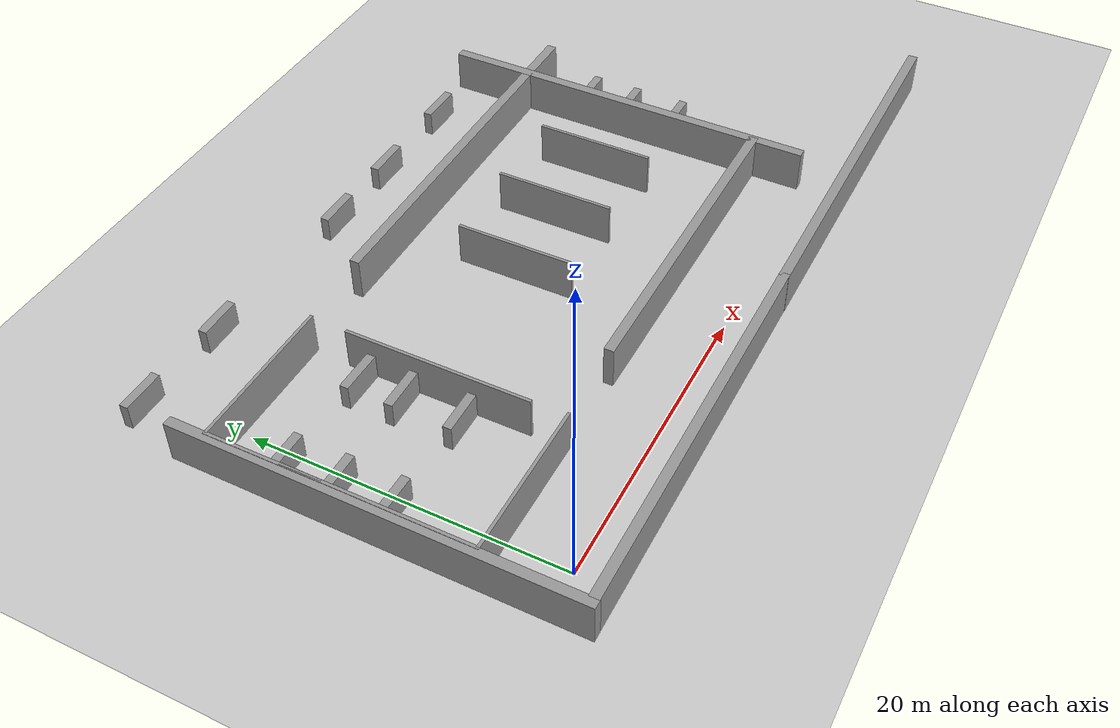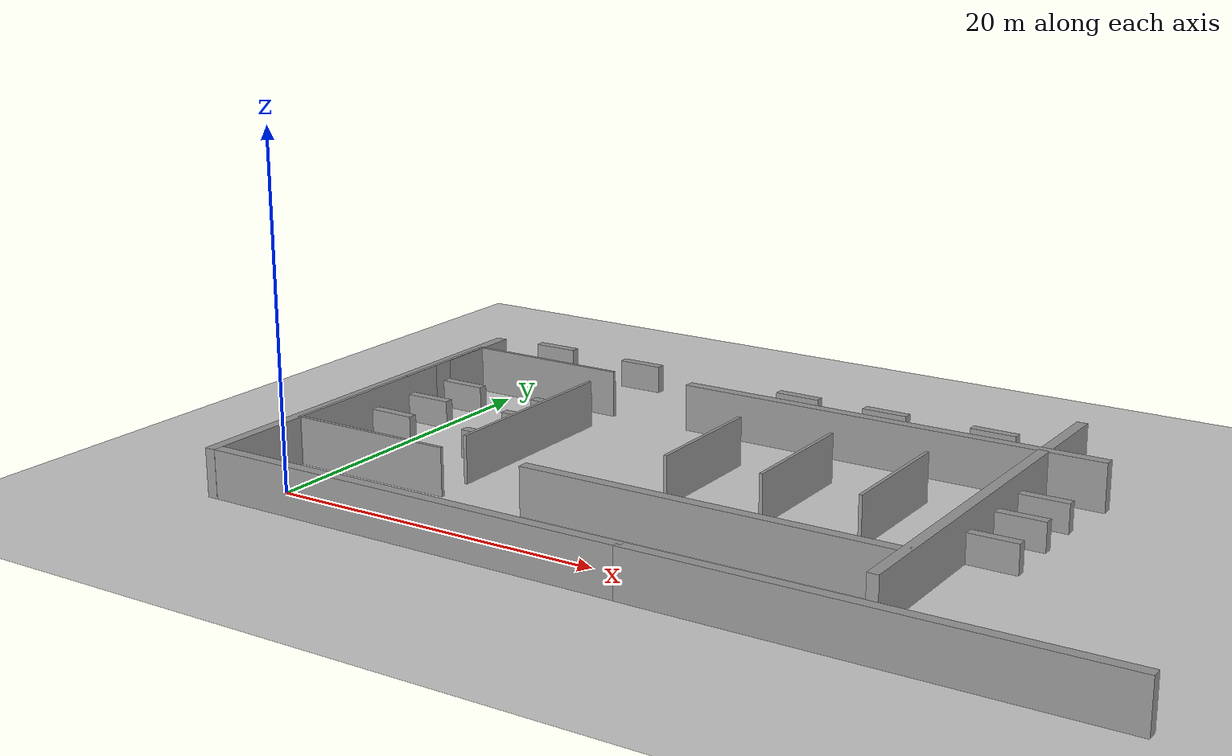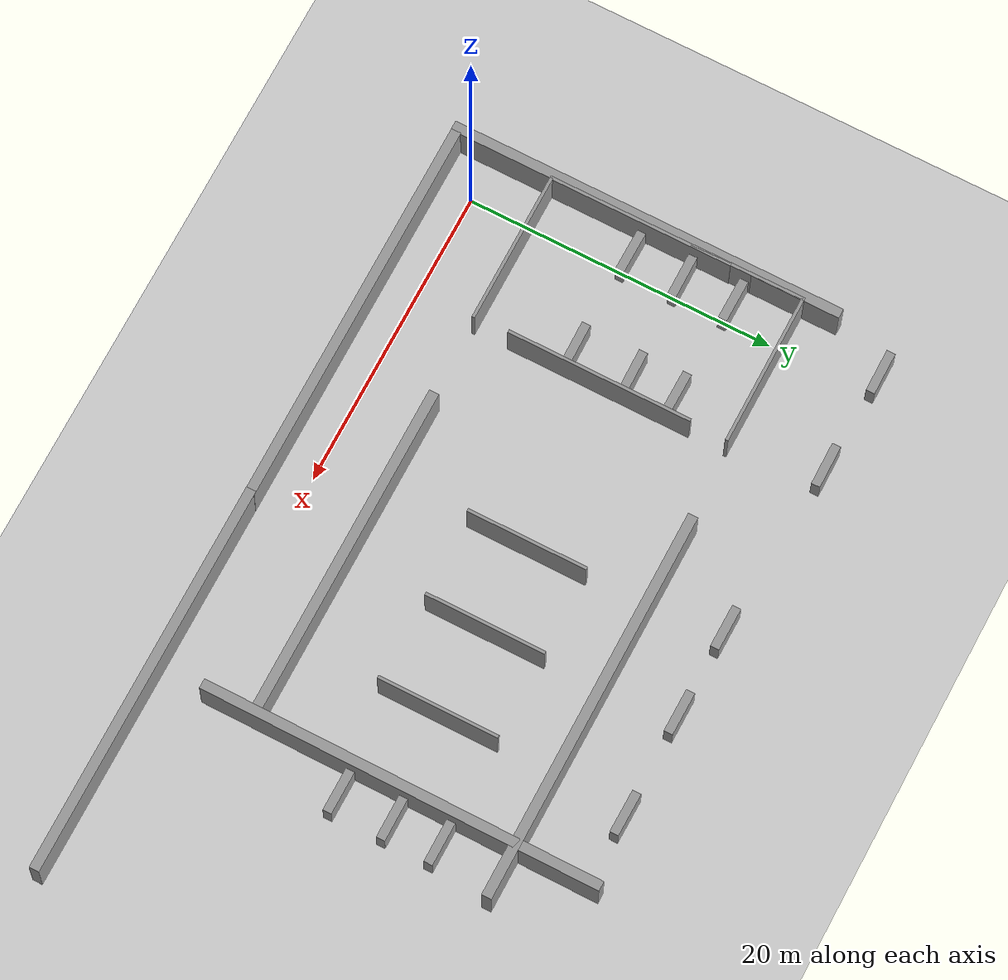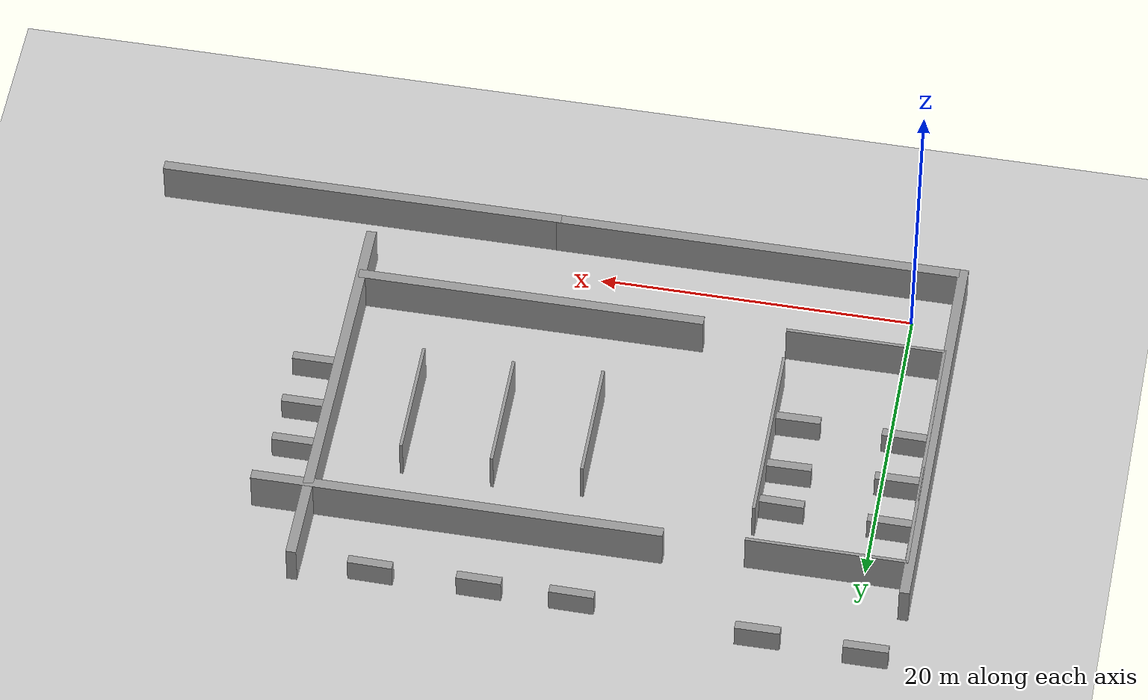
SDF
<sdf version="1.7">
 <world name="default">
  <model name="ground_plane">
   <static>1</static>
   <link name="link">
    <collision name="collision">
     <geometry><plane><normal>0 0 1</normal><size>100 100</size></plane></geometry>
     <surface><friction><ode><mu>100</mu><mu2>50</mu2></ode></friction></surface>
    </collision>
    <visual name="visual">
     <cast_shadows>0</cast_shadows>
     <geometry><plane><normal>0 0 1</normal><size>100 100</size></plane></geometry>
     <material>
      <script><uri>file://media/materials/scripts/gazebo.material</uri><name>Gazebo/Grey</name></script>
     </material>
    </visual>
   </link>
  </model>
  <model name="grey_wall_long">
   <link name="link">
    <pose>0 0 1.37589 0 -0 0</pose>
    <inertial>
     <inertia><ixx>0</ixx><ixy>0</ixy><ixz>0</ixz><iyy>0</iyy><iyz>0</iyz><izz>0</izz></inertia>
     <mass>0</mass>
    </inertial>
    <visual name="visual">
     <cast_shadows>0</cast_shadows>
     <geometry><box><size>25.8815 0.642976 2.8</size></box></geometry>
     <material>
      <script>
       <uri>model://grey_wall/materials/scripts</uri>
       <uri>model://grey_wall/materials/textures</uri>
       <name>vrc/grey_wall</name>
      </script>
      <shader type="pixel"><normal_map>__default__</normal_map></shader>
      <ambient>1 1 1 1</ambient>
      <diffuse>1 1 1 1</diffuse>
      <specular>0 0 0 1</specular>
      <emissive>0 0 0 1</emissive>
     </material>
    </visual>
    <collision name="collision">
     <geometry><box><size>25.8815 0.642976 2.8</size></box></geometry>
     <surface>
      <friction>
       <ode><mu>1</mu><mu2>1</mu2><fdir1>0 0 0</fdir1><slip1>0</slip1><slip2>0</slip2></ode>
       <torsional>
        <coefficient>1</coefficient>
        <patch_radius>0</patch_radius>
        <surface_radius>0</surface_radius>
        <use_patch_radius>1</use_patch_radius>
        <ode><slip>0</slip></ode>
       </torsional>
      </friction>
      <bounce><restitution_coefficient>0</restitution_coefficient><threshold>1e+06</threshold></bounce>
      <contact>
       <collide_without_contact>0</collide_without_contact>
       <collide_without_contact_bitmask>1</collide_without_contact_bitmask>
       <collide_bitmask>1</collide_bitmask>
       <ode>
        <soft_cfm>0</soft_cfm>
        <soft_erp>0.2</soft_erp>
        <kp>1e+13</kp>
        <kd>1</kd>
        <max_vel>0.01</max_vel>
        <min_depth>0</min_depth>
       </ode>
       <bullet>
        <split_impulse>1</split_impulse>
        <split_impulse_penetration_threshold>-0.01</split_impulse_penetration_threshold>
        <soft_cfm>0</soft_cfm>
        <soft_erp>0.2</soft_erp>
        <kp>1e+13</kp>
        <kd>1</kd>
       </bullet>
      </contact>
     </surface>
    </collision>
   </link>
   <static>1</static>
   <pose>10.3524 -2.38269 0 0 -0 0</pose>
  </model>
  <model name="grew_wall_long_vertial">
   <model name="grey_wall_long">
    <link name="link">
     <pose>0 0 1.37589 0 -0 0</pose>
     <inertial>
      <inertia><ixx>0</ixx><ixy>0</ixy><ixz>0</ixz><iyy>0</iyy><iyz>0</iyz><izz>0</izz></inertia>
      <mass>0</mass>
     </inertial>
     <visual name="visual">
      <cast_shadows>0</cast_shadows>
      <geometry><box><size>25.8815 0.642976 2.8</size></box></geometry>
      <material>
       <script>
        <uri>model://grey_wall/materials/scripts</uri>
        <uri>model://grey_wall/materials/textures</uri>
        <name>vrc/grey_wall</name>
       </script>
       <shader type="pixel"><normal_map>__default__</normal_map></shader>
       <ambient>1 1 1 1</ambient>
       <diffuse>1 1 1 1</diffuse>
       <specular>0 0 0 1</specular>
       <emissive>0 0 0 1</emissive>
      </material>
     </visual>
     <collision name="collision">
      <geometry><box><size>25.8815 0.642976 2.8</size></box></geometry>
      <surface>
       <friction>
        <ode><mu>1</mu><mu2>1</mu2><fdir1>0 0 0</fdir1><slip1>0</slip1><slip2>0</slip2></ode>
        <torsional>
         <coefficient>1</coefficient>
         <patch_radius>0</patch_radius>
         <surface_radius>0</surface_radius>
         <use_patch_radius>1</use_patch_radius>
         <ode><slip>0</slip></ode>
        </torsional>
       </friction>
       <bounce><restitution_coefficient>0</restitution_coefficient><threshold>1e+06</threshold></bounce>
       <contact>
        <collide_without_contact>0</collide_without_contact>
        <collide_without_contact_bitmask>1</collide_without_contact_bitmask>
        <collide_bitmask>1</collide_bitmask>
        <ode>
         <soft_cfm>0</soft_cfm>
         <soft_erp>0.2</soft_erp>
         <kp>1e+13</kp>
         <kd>1</kd>
         <max_vel>0.01</max_vel>
         <min_depth>0</min_depth>
        </ode>
        <bullet>
         <split_impulse>1</split_impulse>
         <split_impulse_penetration_threshold>-0.01</split_impulse_penetration_threshold>
         <soft_cfm>0</soft_cfm>
         <soft_erp>0.2</soft_erp>
         <kp>1e+13</kp>
         <kd>1</kd>
        </bullet>
       </contact>
      </surface>
     </collision>
    </link>
    <static>1</static>
    <pose>1e-06 -0 0 0 -0 1.57003</pose>
   </model>
   <static>0</static>
   <pose>-2.8099 10.2266 0 0 -0 0</pose>
  </model>
  <model name="grey_wall_long_0">
   <link name="link">
    <pose>0 0 1.37589 0 -0 0</pose>
    <inertial>
     <inertia><ixx>0</ixx><ixy>0</ixy><ixz>0</ixz><iyy>0</iyy><iyz>0</iyz><izz>0</izz></inertia>
     <mass>0</mass>
    </inertial>
    <visual name="visual">
     <cast_shadows>0</cast_shadows>
     <geometry><box><size>25.8815 0.642976 2.8</size></box></geometry>
     <material>
      <script>
       <uri>model://grey_wall/materials/scripts</uri>
       <uri>model://grey_wall/materials/textures</uri>
       <name>vrc/grey_wall</name>
      </script>
      <shader type="pixel"><normal_map>__default__</normal_map></shader>
      <ambient>1 1 1 1</ambient>
      <diffuse>1 1 1 1</diffuse>
      <specular>0 0 0 1</specular>
      <emissive>0 0 0 1</emissive>
     </material>
    </visual>
    <collision name="collision">
     <geometry><box><size>25.8815 0.642976 2.8</size></box></geometry>
     <surface>
      <friction>
       <ode><mu>1</mu><mu2>1</mu2><fdir1>0 0 0</fdir1><slip1>0</slip1><slip2>0</slip2></ode>
       <torsional>
        <coefficient>1</coefficient>
        <patch_radius>0</patch_radius>
        <surface_radius>0</surface_radius>
        <use_patch_radius>1</use_patch_radius>
        <ode><slip>0</slip></ode>
       </torsional>
      </friction>
      <bounce><restitution_coefficient>0</restitution_coefficient><threshold>1e+06</threshold></bounce>
      <contact>
       <collide_without_contact>0</collide_without_contact>
       <collide_without_contact_bitmask>1</collide_without_contact_bitmask>
       <collide_bitmask>1</collide_bitmask>
       <ode>
        <soft_cfm>0</soft_cfm>
        <soft_erp>0.2</soft_erp>
        <kp>1e+13</kp>
        <kd>1</kd>
        <max_vel>0.01</max_vel>
        <min_depth>0</min_depth>
       </ode>
       <bullet>
        <split_impulse>1</split_impulse>
        <split_impulse_penetration_threshold>-0.01</split_impulse_penetration_threshold>
        <soft_cfm>0</soft_cfm>
        <soft_erp>0.2</soft_erp>
        <kp>1e+13</kp>
        <kd>1</kd>
       </bullet>
      </contact>
     </surface>
    </collision>
   </link>
   <static>1</static>
   <pose>35.9605 -2.39418 0 0 -0 0</pose>
  </model>
  <model name="jiaoshi">
   <model name="grey_wall">
    <static>1</static>
    <link name="link">
     <pose>0 0 1.4 0 -0 0</pose>
     <collision name="collision"><geometry><box><size>7.5 0.2 2.8</size></box></geometry></collision>
     <visual name="visual">
      <cast_shadows>0</cast_shadows>
      <geometry><box><size>7.5 0.2 2.8</size></box></geometry>
      <material>
       <script>
        <uri>model://grey_wall/materials/scripts</uri>
        <uri>model://grey_wall/materials/textures</uri>
        <name>vrc/grey_wall</name>
       </script>
      </material>
     </visual>
    </link>
    <pose>-3.38172 4.2623 0 0 0 -1.56473</pose>
   </model>
   <model name="grey_wall_10m">
    <link name="link">
     <pose>1.25079 -0.023082 1.4 0 -0 0</pose>
     <inertial>
      <inertia><ixx>0</ixx><ixy>0</ixy><ixz>0</ixz><iyy>0</iyy><iyz>0</iyz><izz>0</izz></inertia>
      <mass>0</mass>
     </inertial>
     <visual name="visual">
      <cast_shadows>0</cast_shadows>
      <geometry><box><size>10.0157 0.2 2.8</size></box></geometry>
      <material>
       <script>
        <uri>model://grey_wall/materials/scripts</uri>
        <uri>model://grey_wall/materials/textures</uri>
        <name>vrc/grey_wall</name>
       </script>
       <shader type="pixel"/>
       <ambient>1 1 1 1</ambient>
       <diffuse>1 1 1 1</diffuse>
       <specular>0 0 0 1</specular>
       <emissive>0 0 0 1</emissive>
      </material>
     </visual>
     <collision name="collision">
      <geometry><box><size>10.0157 0.2 2.8</size></box></geometry>
      <surface>
       <friction>
        <ode><mu>1</mu><mu2>1</mu2><fdir1>0 0 0</fdir1><slip1>0</slip1><slip2>0</slip2></ode>
        <torsional>
         <coefficient>1</coefficient>
         <patch_radius>0</patch_radius>
         <surface_radius>0</surface_radius>
         <use_patch_radius>1</use_patch_radius>
         <ode><slip>0</slip></ode>
        </torsional>
       </friction>
       <bounce><restitution_coefficient>0</restitution_coefficient><threshold>1e+06</threshold></bounce>
       <contact>
        <collide_without_contact>0</collide_without_contact>
        <collide_without_contact_bitmask>1</collide_without_contact_bitmask>
        <collide_bitmask>1</collide_bitmask>
        <ode>
         <soft_cfm>0</soft_cfm>
         <soft_erp>0.2</soft_erp>
         <kp>1e+13</kp>
         <kd>1</kd>
         <max_vel>0.01</max_vel>
         <min_depth>0</min_depth>
        </ode>
        <bullet>
         <split_impulse>1</split_impulse>
         <split_impulse_penetration_threshold>-0.01</split_impulse_penetration_threshold>
         <soft_cfm>0</soft_cfm>
         <soft_erp>0.2</soft_erp>
         <kp>1e+13</kp>
         <kd>1</kd>
        </bullet>
       </contact>
      </surface>
     </collision>
    </link>
    <static>1</static>
    <pose>0.433183 -8.77625 0 0 -0 0</pose>
   </model>
   <model name="grey_wall_10m_0">
    <link name="link">
     <pose>1.25079 -0.023082 1.4 0 -0 0</pose>
     <inertial>
      <inertia><ixx>0</ixx><ixy>0</ixy><ixz>0</ixz><iyy>0</iyy><iyz>0</iyz><izz>0</izz></inertia>
      <mass>0</mass>
     </inertial>
     <visual name="visual">
      <cast_shadows>0</cast_shadows>
      <geometry><box><size>10.0157 0.2 2.8</size></box></geometry>
      <material>
       <script>
        <uri>model://grey_wall/materials/scripts</uri>
        <uri>model://grey_wall/materials/textures</uri>
        <name>vrc/grey_wall</name>
       </script>
       <shader type="pixel"/>
       <ambient>1 1 1 1</ambient>
       <diffuse>1 1 1 1</diffuse>
       <specular>0 0 0 1</specular>
       <emissive>0 0 0 1</emissive>
      </material>
     </visual>
     <collision name="collision">
      <geometry><box><size>10.0157 0.2 2.8</size></box></geometry>
      <surface>
       <friction>
        <ode><mu>1</mu><mu2>1</mu2><fdir1>0 0 0</fdir1><slip1>0</slip1><slip2>0</slip2></ode>
        <torsional>
         <coefficient>1</coefficient>
         <patch_radius>0</patch_radius>
         <surface_radius>0</surface_radius>
         <use_patch_radius>1</use_patch_radius>
         <ode><slip>0</slip></ode>
        </torsional>
       </friction>
       <bounce><restitution_coefficient>0</restitution_coefficient><threshold>1e+06</threshold></bounce>
       <contact>
        <collide_without_contact>0</collide_without_contact>
        <collide_without_contact_bitmask>1</collide_without_contact_bitmask>
        <collide_bitmask>1</collide_bitmask>
        <ode>
         <soft_cfm>0</soft_cfm>
         <soft_erp>0.2</soft_erp>
         <kp>1e+13</kp>
         <kd>1</kd>
         <max_vel>0.01</max_vel>
         <min_depth>0</min_depth>
        </ode>
        <bullet>
         <split_impulse>1</split_impulse>
         <split_impulse_penetration_threshold>-0.01</split_impulse_penetration_threshold>
         <soft_cfm>0</soft_cfm>
         <soft_erp>0.2</soft_erp>
         <kp>1e+13</kp>
         <kd>1</kd>
        </bullet>
       </contact>
      </surface>
     </collision>
    </link>
    <static>1</static>
    <pose>0.377364 7.92573 0 0 -0 0</pose>
   </model>
   <model name="grey_wall_12m_vertial">
    <link name="link">
     <pose>0.289112 -0.003891 1.4 0 0 -1.5701</pose>
     <inertial>
      <inertia><ixx>0</ixx><ixy>0</ixy><ixz>0</ixz><iyy>0</iyy><iyz>0</iyz><izz>0</izz></inertia>
      <mass>0</mass>
     </inertial>
     <visual name="visual">
      <cast_shadows>0</cast_shadows>
      <geometry><box><size>12.0527 0.2 2.8</size></box></geometry>
      <material>
       <script>
        <uri>model://grey_wall/materials/scripts</uri>
        <uri>model://grey_wall/materials/textures</uri>
        <name>vrc/grey_wall</name>
       </script>
       <shader type="pixel"/>
       <ambient>1 1 1 1</ambient>
       <diffuse>1 1 1 1</diffuse>
       <specular>0 0 0 1</specular>
       <emissive>0 0 0 1</emissive>
      </material>
     </visual>
     <collision name="collision">
      <geometry><box><size>12.0527 0.2 2.8</size></box></geometry>
      <surface>
       <friction>
        <ode><mu>1</mu><mu2>1</mu2><fdir1>0 0 0</fdir1><slip1>0</slip1><slip2>0</slip2></ode>
        <torsional>
         <coefficient>1</coefficient>
         <patch_radius>0</patch_radius>
         <surface_radius>0</surface_radius>
         <use_patch_radius>1</use_patch_radius>
         <ode><slip>0</slip></ode>
        </torsional>
       </friction>
       <bounce><restitution_coefficient>0</restitution_coefficient><threshold>1e+06</threshold></bounce>
       <contact>
        <collide_without_contact>0</collide_without_contact>
        <collide_without_contact_bitmask>1</collide_without_contact_bitmask>
        <collide_bitmask>1</collide_bitmask>
        <ode>
         <soft_cfm>0</soft_cfm>
         <soft_erp>0.2</soft_erp>
         <kp>1e+13</kp>
         <kd>1</kd>
         <max_vel>0.01</max_vel>
         <min_depth>0</min_depth>
        </ode>
        <bullet>
         <split_impulse>1</split_impulse>
         <split_impulse_penetration_threshold>-0.01</split_impulse_penetration_threshold>
         <soft_cfm>0</soft_cfm>
         <soft_erp>0.2</soft_erp>
         <kp>1e+13</kp>
         <kd>1</kd>
        </bullet>
       </contact>
      </surface>
     </collision>
    </link>
    <static>1</static>
    <pose>-3.63668 -2.87268 0 0 -0 0</pose>
   </model>
   <model name="grey_wall_12m_vertial_0">
    <link name="link">
     <pose>0.289112 -0.003891 1.4 0 0 -1.5701</pose>
     <inertial>
      <inertia><ixx>0</ixx><ixy>0</ixy><ixz>0</ixz><iyy>0</iyy><iyz>0</iyz><izz>0</izz></inertia>
      <mass>0</mass>
     </inertial>
     <visual name="visual">
      <cast_shadows>0</cast_shadows>
      <geometry><box><size>12.0527 0.2 2.8</size></box></geometry>
      <material>
       <script>
        <uri>model://grey_wall/materials/scripts</uri>
        <uri>model://grey_wall/materials/textures</uri>
        <name>vrc/grey_wall</name>
       </script>
       <shader type="pixel"/>
       <ambient>1 1 1 1</ambient>
       <diffuse>1 1 1 1</diffuse>
       <specular>0 0 0 1</specular>
       <emissive>0 0 0 1</emissive>
      </material>
     </visual>
     <collision name="collision">
      <geometry><box><size>12.0527 0.2 2.8</size></box></geometry>
      <surface>
       <friction>
        <ode><mu>1</mu><mu2>1</mu2><fdir1>0 0 0</fdir1><slip1>0</slip1><slip2>0</slip2></ode>
        <torsional>
         <coefficient>1</coefficient>
         <patch_radius>0</patch_radius>
         <surface_radius>0</surface_radius>
         <use_patch_radius>1</use_patch_radius>
         <ode><slip>0</slip></ode>
        </torsional>
       </friction>
       <bounce><restitution_coefficient>0</restitution_coefficient><threshold>1e+06</threshold></bounce>
       <contact>
        <collide_without_contact>0</collide_without_contact>
        <collide_without_contact_bitmask>1</collide_without_contact_bitmask>
        <collide_bitmask>1</collide_bitmask>
        <ode>
         <soft_cfm>0</soft_cfm>
         <soft_erp>0.2</soft_erp>
         <kp>1e+13</kp>
         <kd>1</kd>
         <max_vel>0.01</max_vel>
         <min_depth>0</min_depth>
        </ode>
        <bullet>
         <split_impulse>1</split_impulse>
         <split_impulse_penetration_threshold>-0.01</split_impulse_penetration_threshold>
         <soft_cfm>0</soft_cfm>
         <soft_erp>0.2</soft_erp>
         <kp>1e+13</kp>
         <kd>1</kd>
        </bullet>
       </contact>
      </surface>
     </collision>
    </link>
    <static>1</static>
    <pose>6.20786 -0.539083 0 0 -0 0</pose>
   </model>
   <static>0</static>
   <pose>0.80037 12.8654 0 0 -0 0</pose>
  </model>
  <model name="grew_wall_long_vertial_1_clone_clone_0">
   <model name="grey_wall_long">
    <link name="link">
     <pose>0 0 1.37589 0 -0 0</pose>
     <inertial>
      <inertia><ixx>0</ixx><ixy>0</ixy><ixz>0</ixz><iyy>0</iyy><iyz>0</iyz><izz>0</izz></inertia>
      <mass>0</mass>
     </inertial>
     <visual name="visual">
      <cast_shadows>0</cast_shadows>
      <geometry><box><size>25.8815 0.642976 2.8</size></box></geometry>
      <material>
       <script>
        <uri>model://grey_wall/materials/scripts</uri>
        <uri>model://grey_wall/materials/textures</uri>
        <name>vrc/grey_wall</name>
       </script>
       <shader type="pixel"><normal_map>__default__</normal_map></shader>
       <ambient>1 1 1 1</ambient>
       <diffuse>1 1 1 1</diffuse>
       <specular>0 0 0 1</specular>
       <emissive>0 0 0 1</emissive>
      </material>
     </visual>
     <collision name="collision">
      <geometry><box><size>25.8815 0.642976 2.8</size></box></geometry>
      <surface>
       <friction>
        <ode><mu>1</mu><mu2>1</mu2><fdir1>0 0 0</fdir1><slip1>0</slip1><slip2>0</slip2></ode>
        <torsional>
         <coefficient>1</coefficient>
         <patch_radius>0</patch_radius>
         <surface_radius>0</surface_radius>
         <use_patch_radius>1</use_patch_radius>
         <ode><slip>0</slip></ode>
        </torsional>
       </friction>
       <bounce><restitution_coefficient>0</restitution_coefficient><threshold>1e+06</threshold></bounce>
       <contact>
        <collide_without_contact>0</collide_without_contact>
        <collide_without_contact_bitmask>1</collide_without_contact_bitmask>
        <collide_bitmask>1</collide_bitmask>
        <ode>
         <soft_cfm>0</soft_cfm>
         <soft_erp>0.2</soft_erp>
         <kp>1e+13</kp>
         <kd>1</kd>
         <max_vel>0.01</max_vel>
         <min_depth>0</min_depth>
        </ode>
        <bullet>
         <split_impulse>1</split_impulse>
         <split_impulse_penetration_threshold>-0.01</split_impulse_penetration_threshold>
         <soft_cfm>0</soft_cfm>
         <soft_erp>0.2</soft_erp>
         <kp>1e+13</kp>
         <kd>1</kd>
        </bullet>
       </contact>
      </surface>
     </collision>
    </link>
    <static>1</static>
    <pose>1e-06 -0 0 0 -0 1.57003</pose>
   </model>
   <static>0</static>
   <pose>34.7479 13.6793 0 0 -0 0</pose>
  </model>
  <model name="grey_wall_long_term_clone">
   <link name="link">
    <pose>-1.74587 -0.378849 1.37589 0 -0 0</pose>
    <inertial>
     <inertia><ixx>0</ixx><ixy>0</ixy><ixz>0</ixz><iyy>0</iyy><iyz>0</iyz><izz>0</izz></inertia>
     <mass>0</mass>
    </inertial>
    <visual name="visual">
     <cast_shadows>0</cast_shadows>
     <geometry><box><size>22.1596 0.642976 2.8</size></box></geometry>
     <material>
      <script>
       <uri>model://grey_wall/materials/scripts</uri>
       <uri>model://grey_wall/materials/textures</uri>
       <name>vrc/grey_wall</name>
      </script>
      <shader type="pixel"><normal_map>__default__</normal_map></shader>
      <ambient>1 1 1 1</ambient>
      <diffuse>1 1 1 1</diffuse>
      <specular>0 0 0 1</specular>
      <emissive>0 0 0 1</emissive>
     </material>
    </visual>
    <collision name="collision">
     <geometry><box><size>22.1596 0.642976 2.8</size></box></geometry>
     <surface>
      <friction>
       <ode><mu>1</mu><mu2>1</mu2><fdir1>0 0 0</fdir1><slip1>0</slip1><slip2>0</slip2></ode>
       <torsional>
        <coefficient>1</coefficient>
        <patch_radius>0</patch_radius>
        <surface_radius>0</surface_radius>
        <use_patch_radius>1</use_patch_radius>
        <ode><slip>0</slip></ode>
       </torsional>
      </friction>
      <bounce><restitution_coefficient>0</restitution_coefficient><threshold>1e+06</threshold></bounce>
      <contact>
       <collide_without_contact>0</collide_without_contact>
       <collide_without_contact_bitmask>1</collide_without_contact_bitmask>
       <collide_bitmask>1</collide_bitmask>
       <ode>
        <soft_cfm>0</soft_cfm>
        <soft_erp>0.2</soft_erp>
        <kp>1e+13</kp>
        <kd>1</kd>
        <max_vel>0.01</max_vel>
        <min_depth>0</min_depth>
       </ode>
       <bullet>
        <split_impulse>1</split_impulse>
        <split_impulse_penetration_threshold>-0.01</split_impulse_penetration_threshold>
        <soft_cfm>0</soft_cfm>
        <soft_erp>0.2</soft_erp>
        <kp>1e+13</kp>
        <kd>1</kd>
       </bullet>
      </contact>
     </surface>
    </collision>
   </link>
   <static>1</static>
   <pose>25.5567 4.60243 0 0 -0 0</pose>
  </model>
  <model name="unit_box_clone_8">
   <pose>-1.0084 26.7455 0.834396 -0 -3.2e-05 0.004336</pose>
   <link name="link">
    <inertial>
     <mass>1</mass>
     <inertia>
      <ixx>0.166667</ixx>
      <ixy>0</ixy>
      <ixz>0</ixz>
      <iyy>0.166667</iyy>
      <iyz>0</iyz>
      <izz>0.166667</izz>
     </inertia>
    </inertial>
    <collision name="collision"><geometry><box><size>2.81196 0.562598 1.66888</size></box></geometry></collision>
    <visual name="visual">
     <geometry><box><size>2.81196 0.562598 1.66888</size></box></geometry>
     <material>
      <script><name>Gazebo/Grey</name><uri>file://media/materials/scripts/gazebo.material</uri></script>
     </material>
    </visual>
   </link>
  </model>
  <model name="unit_box_clone_9">
   <pose>5.71547 26.4941 0.834396 0 3.2e-05 0.007014</pose>
   <link name="link">
    <inertial>
     <mass>1</mass>
     <inertia>
      <ixx>0.166667</ixx>
      <ixy>0</ixy>
      <ixz>0</ixz>
      <iyy>0.166667</iyy>
      <iyz>0</iyz>
      <izz>0.166667</izz>
     </inertia>
    </inertial>
    <collision name="collision"><geometry><box><size>2.81196 0.562598 1.66888</size></box></geometry></collision>
    <visual name="visual">
     <geometry><box><size>2.81196 0.562598 1.66888</size></box></geometry>
     <material>
      <script><name>Gazebo/Grey</name><uri>file://media/materials/scripts/gazebo.material</uri></script>
     </material>
    </visual>
   </link>
  </model>
  <model name="unit_box_clone_10">
   <pose>-1.0443 16.9849 0.834396 0 -3.2e-05 -0.007874</pose>
   <link name="link">
    <inertial>
     <mass>1</mass>
     <inertia>
      <ixx>0.166667</ixx>
      <ixy>0</ixy>
      <ixz>0</ixz>
      <iyy>0.166667</iyy>
      <iyz>0</iyz>
      <izz>0.166667</izz>
     </inertia>
    </inertial>
    <collision name="collision"><geometry><box><size>2.81196 0.562598 1.66888</size></box></geometry></collision>
    <visual name="visual">
     <geometry><box><size>2.81196 0.562598 1.66888</size></box></geometry>
     <material>
      <script><name>Gazebo/Grey</name><uri>file://media/materials/scripts/gazebo.material</uri></script>
     </material>
    </visual>
   </link>
  </model>
  <model name="unit_box_clone_11">
   <pose>5.76526 16.6638 0.834396 0 3.2e-05 -0.011957</pose>
   <link name="link">
    <inertial>
     <mass>1</mass>
     <inertia>
      <ixx>0.166667</ixx>
      <ixy>0</ixy>
      <ixz>0</ixz>
      <iyy>0.166667</iyy>
      <iyz>0</iyz>
      <izz>0.166667</izz>
     </inertia>
    </inertial>
    <collision name="collision"><geometry><box><size>2.81196 0.562598 1.66888</size></box></geometry></collision>
    <visual name="visual">
     <geometry><box><size>2.81196 0.562598 1.66888</size></box></geometry>
     <material>
      <script><name>Gazebo/Grey</name><uri>file://media/materials/scripts/gazebo.material</uri></script>
     </material>
    </visual>
   </link>
  </model>
  <model name="unit_box_clone_12">
   <pose>-1.01516 13.6245 0.834396 -0 -3.2e-05 0.005921</pose>
   <link name="link">
    <inertial>
     <mass>1</mass>
     <inertia>
      <ixx>0.166667</ixx>
      <ixy>0</ixy>
      <ixz>0</ixz>
      <iyy>0.166667</iyy>
      <iyz>0</iyz>
      <izz>0.166667</izz>
     </inertia>
    </inertial>
    <collision name="collision"><geometry><box><size>2.81196 0.562598 1.66888</size></box></geometry></collision>
    <visual name="visual">
     <geometry><box><size>2.81196 0.562598 1.66888</size></box></geometry>
     <material>
      <script><name>Gazebo/Grey</name><uri>file://media/materials/scripts/gazebo.material</uri></script>
     </material>
    </visual>
   </link>
  </model>
  <model name="unit_box_clone_13">
   <pose>5.75956 13.7885 0.834396 0 -3.2e-05 0.013581</pose>
   <link name="link">
    <inertial>
     <mass>1</mass>
     <inertia>
      <ixx>0.166667</ixx>
      <ixy>0</ixy>
      <ixz>0</ixz>
      <iyy>0.166667</iyy>
      <iyz>0</iyz>
      <izz>0.166667</izz>
     </inertia>
    </inertial>
    <collision name="collision"><geometry><box><size>2.81196 0.562598 1.66888</size></box></geometry></collision>
    <visual name="visual">
     <geometry><box><size>2.81196 0.562598 1.66888</size></box></geometry>
     <material>
      <script><name>Gazebo/Grey</name><uri>file://media/materials/scripts/gazebo.material</uri></script>
     </material>
    </visual>
   </link>
  </model>
  <model name="unit_box_clone_14">
   <pose>-0.955452 10.1893 0.834396 0 3.2e-05 -0.013923</pose>
   <link name="link">
    <inertial>
     <mass>1</mass>
     <inertia>
      <ixx>0.166667</ixx>
      <ixy>0</ixy>
      <ixz>0</ixz>
      <iyy>0.166667</iyy>
      <iyz>0</iyz>
      <izz>0.166667</izz>
     </inertia>
    </inertial>
    <collision name="collision"><geometry><box><size>2.81196 0.562598 1.66888</size></box></geometry></collision>
    <visual name="visual">
     <geometry><box><size>2.81196 0.562598 1.66888</size></box></geometry>
     <material>
      <script><name>Gazebo/Grey</name><uri>file://media/materials/scripts/gazebo.material</uri></script>
     </material>
    </visual>
   </link>
  </model>
  <model name="unit_box_clone_15">
   <pose>5.76408 9.99793 0.834396 -0 -3.2e-05 0.012431</pose>
   <link name="link">
    <inertial>
     <mass>1</mass>
     <inertia>
      <ixx>0.166667</ixx>
      <ixy>0</ixy>
      <ixz>0</ixz>
      <iyy>0.166667</iyy>
      <iyz>0</iyz>
      <izz>0.166667</izz>
     </inertia>
    </inertial>
    <collision name="collision"><geometry><box><size>2.81196 0.562598 1.66888</size></box></geometry></collision>
    <visual name="visual">
     <geometry><box><size>2.81196 0.562598 1.66888</size></box></geometry>
     <material>
      <script><name>Gazebo/Grey</name><uri>file://media/materials/scripts/gazebo.material</uri></script>
     </material>
    </visual>
   </link>
  </model>
  <model name="unit_box_clone_28">
   <pose>36.4854 17.1246 0.834396 -0 3.2e-05 -0.001719</pose>
   <link name="link">
    <inertial>
     <mass>1</mass>
     <inertia>
      <ixx>0.166667</ixx>
      <ixy>0</ixy>
      <ixz>0</ixz>
      <iyy>0.166667</iyy>
      <iyz>0</iyz>
      <izz>0.166667</izz>
     </inertia>
    </inertial>
    <collision name="collision"><geometry><box><size>2.81196 0.562598 1.66888</size></box></geometry></collision>
    <visual name="visual">
     <geometry><box><size>2.81196 0.562598 1.66888</size></box></geometry>
     <material>
      <script><name>Gazebo/Grey</name><uri>file://media/materials/scripts/gazebo.material</uri></script>
     </material>
    </visual>
   </link>
  </model>
  <model name="unit_box_clone_30">
   <pose>36.483 14.0429 0.834396 0 -3.2e-05 0.001036</pose>
   <link name="link">
    <inertial>
     <mass>1</mass>
     <inertia>
      <ixx>0.166667</ixx>
      <ixy>0</ixy>
      <ixz>0</ixz>
      <iyy>0.166667</iyy>
      <iyz>0</iyz>
      <izz>0.166667</izz>
     </inertia>
    </inertial>
    <collision name="collision"><geometry><box><size>2.81196 0.562598 1.66888</size></box></geometry></collision>
    <visual name="visual">
     <geometry><box><size>2.81196 0.562598 1.66888</size></box></geometry>
     <material>
      <script><name>Gazebo/Grey</name><uri>file://media/materials/scripts/gazebo.material</uri></script>
     </material>
    </visual>
   </link>
  </model>
  <model name="unit_box_clone_32">
   <pose>36.4839 10.5788 0.834396 0 -3.2e-05 -0.003827</pose>
   <link name="link">
    <inertial>
     <mass>1</mass>
     <inertia>
      <ixx>0.166667</ixx>
      <ixy>0</ixy>
      <ixz>0</ixz>
      <iyy>0.166667</iyy>
      <iyz>0</iyz>
      <izz>0.166667</izz>
     </inertia>
    </inertial>
    <collision name="collision"><geometry><box><size>2.81196 0.562598 1.66888</size></box></geometry></collision>
    <visual name="visual">
     <geometry><box><size>2.81196 0.562598 1.66888</size></box></geometry>
     <material>
      <script><name>Gazebo/Grey</name><uri>file://media/materials/scripts/gazebo.material</uri></script>
     </material>
    </visual>
   </link>
  </model>
  <model name="grew_wall_long_vertial_1_clone_clone_5_clone">
   <model name="grey_wall_long">
    <link name="link">
     <pose>0 0 1.37589 0 -0 0</pose>
     <inertial>
      <inertia><ixx>0</ixx><ixy>0</ixy><ixz>0</ixz><iyy>0</iyy><iyz>0</iyz><izz>0</izz></inertia>
      <mass>0</mass>
     </inertial>
     <visual name="visual">
      <cast_shadows>0</cast_shadows>
      <geometry><box><size>25.8815 0.642976 2.8</size></box></geometry>
      <material>
       <script>
        <uri>model://grey_wall/materials/scripts</uri>
        <uri>model://grey_wall/materials/textures</uri>
        <name>vrc/grey_wall</name>
       </script>
       <shader type="pixel"><normal_map>__default__</normal_map></shader>
       <ambient>1 1 1 1</ambient>
       <diffuse>1 1 1 1</diffuse>
       <specular>0 0 0 1</specular>
       <emissive>0 0 0 1</emissive>
      </material>
     </visual>
     <collision name="collision">
      <geometry><box><size>25.8815 0.642976 2.8</size></box></geometry>
      <surface>
       <friction>
        <ode><mu>1</mu><mu2>1</mu2><fdir1>0 0 0</fdir1><slip1>0</slip1><slip2>0</slip2></ode>
        <torsional>
         <coefficient>1</coefficient>
         <patch_radius>0</patch_radius>
         <surface_radius>0</surface_radius>
         <use_patch_radius>1</use_patch_radius>
         <ode><slip>0</slip></ode>
        </torsional>
       </friction>
       <bounce><restitution_coefficient>0</restitution_coefficient><threshold>1e+06</threshold></bounce>
       <contact>
        <collide_without_contact>0</collide_without_contact>
        <collide_without_contact_bitmask>1</collide_without_contact_bitmask>
        <collide_bitmask>1</collide_bitmask>
        <ode>
         <soft_cfm>0</soft_cfm>
         <soft_erp>0.2</soft_erp>
         <kp>1e+13</kp>
         <kd>1</kd>
         <max_vel>0.01</max_vel>
         <min_depth>0</min_depth>
        </ode>
        <bullet>
         <split_impulse>1</split_impulse>
         <split_impulse_penetration_threshold>-0.01</split_impulse_penetration_threshold>
         <soft_cfm>0</soft_cfm>
         <soft_erp>0.2</soft_erp>
         <kp>1e+13</kp>
         <kd>1</kd>
        </bullet>
       </contact>
      </surface>
     </collision>
    </link>
    <static>1</static>
    <pose>1e-06 -0 0 0 -0 1.57003</pose>
   </model>
   <static>0</static>
   <pose>25.417 21.133 0 0 -0 1.5707</pose>
  </model>
  <model name="unit_box_clone_22_clone_clone_1">
   <pose>17.3731 25.787 0.834396 -0 3.2e-05 -0.00795</pose>
   <link name="link">
    <inertial>
     <mass>1</mass>
     <inertia>
      <ixx>0.166667</ixx>
      <ixy>0</ixy>
      <ixz>0</ixz>
      <iyy>0.166667</iyy>
      <iyz>0</iyz>
      <izz>0.166667</izz>
     </inertia>
    </inertial>
    <collision name="collision"><geometry><box><size>2.81196 0.562598 1.66888</size></box></geometry></collision>
    <visual name="visual">
     <geometry><box><size>2.81196 0.562598 1.66888</size></box></geometry>
     <material>
      <script><name>Gazebo/Grey</name><uri>file://media/materials/scripts/gazebo.material</uri></script>
     </material>
    </visual>
   </link>
  </model>
  <model name="unit_box_clone_22_clone_clone_1_clone">
   <pose>23.1711 25.7354 0.834396 0 -3.2e-05 -0.00795</pose>
   <link name="link">
    <inertial>
     <mass>1</mass>
     <inertia>
      <ixx>0.166667</ixx>
      <ixy>0</ixy>
      <ixz>0</ixz>
      <iyy>0.166667</iyy>
      <iyz>0</iyz>
      <izz>0.166667</izz>
     </inertia>
    </inertial>
    <collision name="collision"><geometry><box><size>2.81196 0.562598 1.66888</size></box></geometry></collision>
    <visual name="visual">
     <geometry><box><size>2.81196 0.562598 1.66888</size></box></geometry>
     <material>
      <script><name>Gazebo/Grey</name><uri>file://media/materials/scripts/gazebo.material</uri></script>
     </material>
    </visual>
   </link>
  </model>
  <model name="unit_box_clone_22_clone_clone_1_clone_0">
   <pose>29.9776 25.7326 0.834396 0 3.2e-05 -0.013934</pose>
   <link name="link">
    <inertial>
     <mass>1</mass>
     <inertia>
      <ixx>0.166667</ixx>
      <ixy>0</ixy>
      <ixz>0</ixz>
      <iyy>0.166667</iyy>
      <iyz>0</iyz>
      <izz>0.166667</izz>
     </inertia>
    </inertial>
    <collision name="collision"><geometry><box><size>2.81196 0.562598 1.66888</size></box></geometry></collision>
    <visual name="visual">
     <geometry><box><size>2.81196 0.562598 1.66888</size></box></geometry>
     <material>
      <script><name>Gazebo/Grey</name><uri>file://media/materials/scripts/gazebo.material</uri></script>
     </material>
    </visual>
   </link>
  </model>
  <model name="grey_wall_high_clone_13">
   <link name="link">
    <pose>0.546134 -0.568384 0.521109 0 -0 0</pose>
    <inertial>
     <inertia><ixx>0</ixx><ixy>0</ixy><ixz>0</ixz><iyy>0</iyy><iyz>0</iyz><izz>0</izz></inertia>
     <mass>0</mass>
    </inertial>
    <visual name="visual">
     <cast_shadows>0</cast_shadows>
     <geometry><box><size>7.82417 0.2 4.57376</size></box></geometry>
     <material>
      <script>
       <uri>model://grey_wall/materials/scripts</uri>
       <uri>model://grey_wall/materials/textures</uri>
       <name>vrc/grey_wall</name>
      </script>
      <shader type="pixel"/>
      <ambient>1 1 1 1</ambient>
      <diffuse>1 1 1 1</diffuse>
      <specular>0 0 0 1</specular>
      <emissive>0 0 0 1</emissive>
     </material>
    </visual>
    <collision name="collision">
     <geometry><box><size>7.82417 0.2 4.57376</size></box></geometry>
     <surface>
      <friction>
       <ode><mu>1</mu><mu2>1</mu2><fdir1>0 0 0</fdir1><slip1>0</slip1><slip2>0</slip2></ode>
       <torsional>
        <coefficient>1</coefficient>
        <patch_radius>0</patch_radius>
        <surface_radius>0</surface_radius>
        <use_patch_radius>1</use_patch_radius>
        <ode><slip>0</slip></ode>
       </torsional>
      </friction>
      <bounce><restitution_coefficient>0</restitution_coefficient><threshold>1e+06</threshold></bounce>
      <contact>
       <collide_without_contact>0</collide_without_contact>
       <collide_without_contact_bitmask>1</collide_without_contact_bitmask>
       <collide_bitmask>1</collide_bitmask>
       <ode>
        <soft_cfm>0</soft_cfm>
        <soft_erp>0.2</soft_erp>
        <kp>1e+13</kp>
        <kd>1</kd>
        <max_vel>0.01</max_vel>
        <min_depth>0</min_depth>
       </ode>
       <bullet>
        <split_impulse>1</split_impulse>
        <split_impulse_penetration_threshold>-0.01</split_impulse_penetration_threshold>
        <soft_cfm>0</soft_cfm>
        <soft_erp>0.2</soft_erp>
        <kp>1e+13</kp>
        <kd>1</kd>
       </bullet>
      </contact>
     </surface>
    </collision>
   </link>
   <static>1</static>
   <pose>18.8368 13.8103 -0 0 0 -1.56746</pose>
  </model>
  <model name="grey_wall_high_clone_14">
   <link name="link">
    <pose>0.546134 -0.568384 0.521109 0 -0 0</pose>
    <inertial>
     <inertia><ixx>0</ixx><ixy>0</ixy><ixz>0</ixz><iyy>0</iyy><iyz>0</iyz><izz>0</izz></inertia>
     <mass>0</mass>
    </inertial>
    <visual name="visual">
     <cast_shadows>0</cast_shadows>
     <geometry><box><size>7.82417 0.2 4.57376</size></box></geometry>
     <material>
      <script>
       <uri>model://grey_wall/materials/scripts</uri>
       <uri>model://grey_wall/materials/textures</uri>
       <name>vrc/grey_wall</name>
      </script>
      <shader type="pixel"/>
      <ambient>1 1 1 1</ambient>
      <diffuse>1 1 1 1</diffuse>
      <specular>0 0 0 1</specular>
      <emissive>0 0 0 1</emissive>
     </material>
    </visual>
    <collision name="collision">
     <geometry><box><size>7.82417 0.2 4.57376</size></box></geometry>
     <surface>
      <friction>
       <ode><mu>1</mu><mu2>1</mu2><fdir1>0 0 0</fdir1><slip1>0</slip1><slip2>0</slip2></ode>
       <torsional>
        <coefficient>1</coefficient>
        <patch_radius>0</patch_radius>
        <surface_radius>0</surface_radius>
        <use_patch_radius>1</use_patch_radius>
        <ode><slip>0</slip></ode>
       </torsional>
      </friction>
      <bounce><restitution_coefficient>0</restitution_coefficient><threshold>1e+06</threshold></bounce>
      <contact>
       <collide_without_contact>0</collide_without_contact>
       <collide_without_contact_bitmask>1</collide_without_contact_bitmask>
       <collide_bitmask>1</collide_bitmask>
       <ode>
        <soft_cfm>0</soft_cfm>
        <soft_erp>0.2</soft_erp>
        <kp>1e+13</kp>
        <kd>1</kd>
        <max_vel>0.01</max_vel>
        <min_depth>0</min_depth>
       </ode>
       <bullet>
        <split_impulse>1</split_impulse>
        <split_impulse_penetration_threshold>-0.01</split_impulse_penetration_threshold>
        <soft_cfm>0</soft_cfm>
        <soft_erp>0.2</soft_erp>
        <kp>1e+13</kp>
        <kd>1</kd>
       </bullet>
      </contact>
     </surface>
    </collision>
   </link>
   <static>1</static>
   <pose>24.4983 14.0318 -0 0 0 -1.56746</pose>
  </model>
  <model name="grey_wall_high_clone_15">
   <link name="link">
    <pose>0.546134 -0.568384 0.521109 0 -0 0</pose>
    <inertial>
     <inertia><ixx>0</ixx><ixy>0</ixy><ixz>0</ixz><iyy>0</iyy><iyz>0</iyz><izz>0</izz></inertia>
     <mass>0</mass>
    </inertial>
    <visual name="visual">
     <cast_shadows>0</cast_shadows>
     <geometry><box><size>7.82417 0.2 4.57376</size></box></geometry>
     <material>
      <script>
       <uri>model://grey_wall/materials/scripts</uri>
       <uri>model://grey_wall/materials/textures</uri>
       <name>vrc/grey_wall</name>
      </script>
      <shader type="pixel"/>
      <ambient>1 1 1 1</ambient>
      <diffuse>1 1 1 1</diffuse>
      <specular>0 0 0 1</specular>
      <emissive>0 0 0 1</emissive>
     </material>
    </visual>
    <collision name="collision">
     <geometry><box><size>7.82417 0.2 4.57376</size></box></geometry>
     <surface>
      <friction>
       <ode><mu>1</mu><mu2>1</mu2><fdir1>0 0 0</fdir1><slip1>0</slip1><slip2>0</slip2></ode>
       <torsional>
        <coefficient>1</coefficient>
        <patch_radius>0</patch_radius>
        <surface_radius>0</surface_radius>
        <use_patch_radius>1</use_patch_radius>
        <ode><slip>0</slip></ode>
       </torsional>
      </friction>
      <bounce><restitution_coefficient>0</restitution_coefficient><threshold>1e+06</threshold></bounce>
      <contact>
       <collide_without_contact>0</collide_without_contact>
       <collide_without_contact_bitmask>1</collide_without_contact_bitmask>
       <collide_bitmask>1</collide_bitmask>
       <ode>
        <soft_cfm>0</soft_cfm>
        <soft_erp>0.2</soft_erp>
        <kp>1e+13</kp>
        <kd>1</kd>
        <max_vel>0.01</max_vel>
        <min_depth>0</min_depth>
       </ode>
       <bullet>
        <split_impulse>1</split_impulse>
        <split_impulse_penetration_threshold>-0.01</split_impulse_penetration_threshold>
        <soft_cfm>0</soft_cfm>
        <soft_erp>0.2</soft_erp>
        <kp>1e+13</kp>
        <kd>1</kd>
       </bullet>
      </contact>
     </surface>
    </collision>
   </link>
   <static>1</static>
   <pose>30.2324 13.9828 -0 0 0 -1.56746</pose>
  </model>
 </world>
</sdf>
